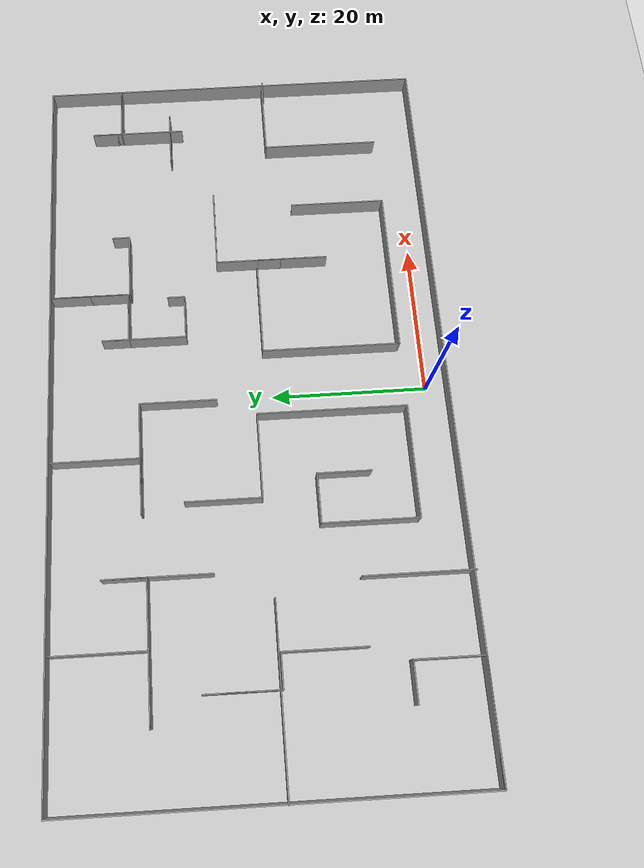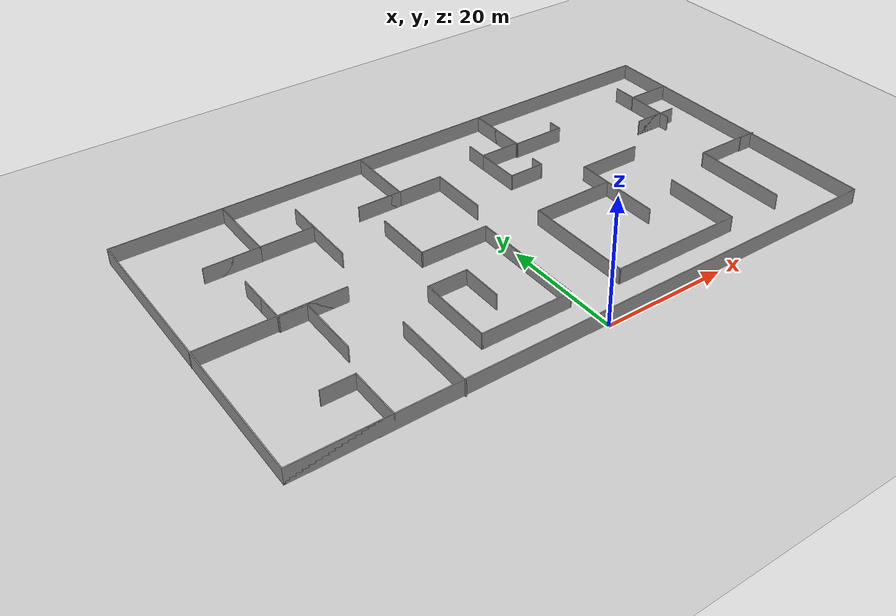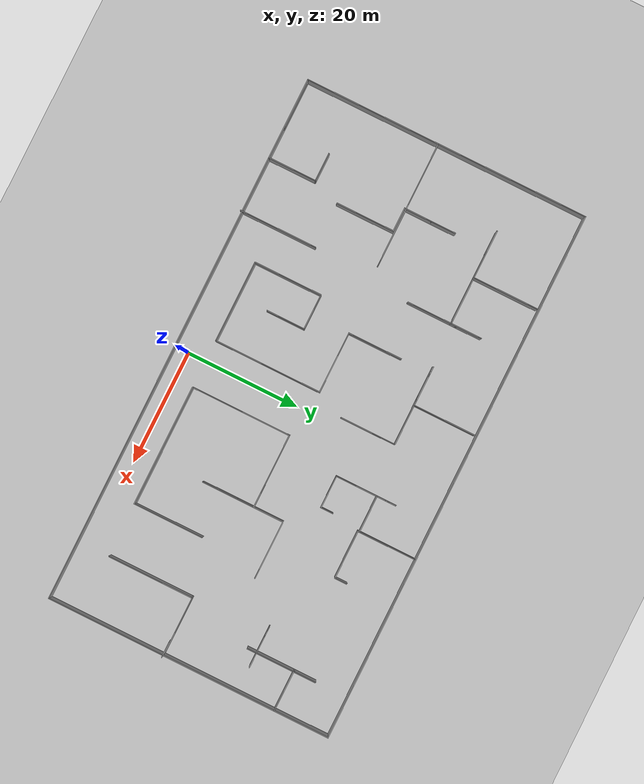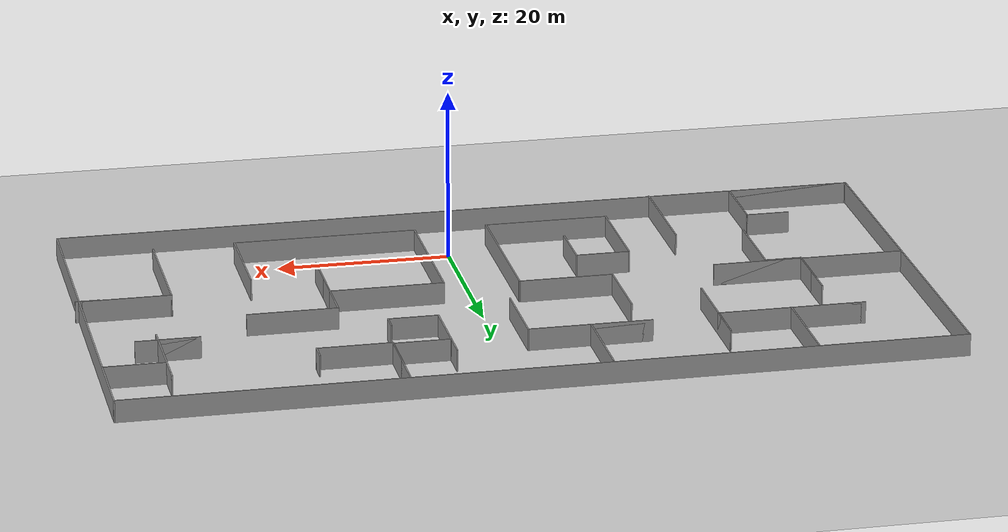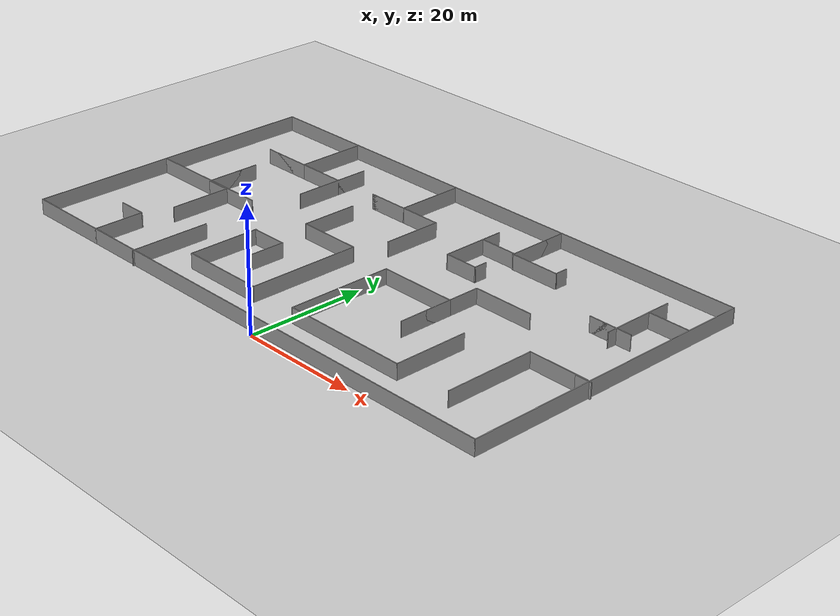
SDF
<sdf version="1.6">
 <world name="default">
  <model name="ground_plane">
   <static>1</static>
   <link name="link">
    <collision name="collision">
     <geometry><plane><normal>0 0 1</normal><size>100 100</size></plane></geometry>
     <surface><friction><ode><mu>100</mu><mu2>50</mu2></ode></friction></surface>
    </collision>
    <visual name="visual">
     <cast_shadows>0</cast_shadows>
     <geometry><plane><normal>0 0 1</normal><size>100 100</size></plane></geometry>
     <material>
      <script><uri>file://media/materials/scripts/gazebo.material</uri><name>Gazebo/Grey</name></script>
     </material>
    </visual>
   </link>
  </model>
  <model name="PaperTestRoom2_clone">
   <pose>-1.27358 20.494 2.5 0 -0 0</pose>
   <link name="Wall_10">
    <collision name="Wall_10_Collision">
     <geometry><box><size>14.25 0.15 2.5</size></box></geometry>
     <pose>0 0 1.25 0 -0 0</pose>
    </collision>
    <visual name="Wall_10_Visual">
     <pose>0 0 1.25 0 -0 0</pose>
     <geometry><box><size>14.25 0.15 2.5</size></box></geometry>
     <material>
      <script><uri>file://media/materials/scripts/gazebo.material</uri><name>Gazebo/Grey</name></script>
      <ambient>1 1 1 1</ambient>
     </material>
     <meta><layer>0</layer></meta>
    </visual>
    <pose>-39.665 -22.375 0 0 -0 0</pose>
   </link>
   <link name="Wall_11">
    <collision name="Wall_11_Collision">
     <geometry><box><size>8.5 0.15 2.5</size></box></geometry>
     <pose>0 0 1.25 0 -0 0</pose>
    </collision>
    <visual name="Wall_11_Visual">
     <pose>0 0 1.25 0 -0 0</pose>
     <geometry><box><size>8.5 0.15 2.5</size></box></geometry>
     <material>
      <script><uri>file://media/materials/scripts/gazebo.material</uri><name>Gazebo/Grey</name></script>
      <ambient>1 1 1 1</ambient>
     </material>
     <meta><layer>0</layer></meta>
    </visual>
    <pose>-32.615 -18.2 0 0 -0 1.5708</pose>
   </link>
   <link name="Wall_12">
    <collision name="Wall_12_Collision">
     <geometry><box><size>5 0.15 2.5</size></box></geometry>
     <pose>0 0 1.25 0 -0 0</pose>
    </collision>
    <visual name="Wall_12_Visual">
     <pose>0 0 1.25 0 -0 0</pose>
     <geometry><box><size>5 0.15 2.5</size></box></geometry>
     <material>
      <script><uri>file://media/materials/scripts/gazebo.material</uri><name>Gazebo/Grey</name></script>
      <ambient>1 1 1 1</ambient>
     </material>
     <meta><layer>0</layer></meta>
    </visual>
    <pose>-35.04 -14.025 0 0 -0 3.14159</pose>
   </link>
   <link name="Wall_14">
    <collision name="Wall_14_Collision">
     <geometry><box><size>13.5 0.15 2.5</size></box></geometry>
     <pose>0 0 1.25 0 -0 0</pose>
    </collision>
    <visual name="Wall_14_Visual">
     <pose>0 0 1.25 0 -0 0</pose>
     <geometry><box><size>13.5 0.15 2.5</size></box></geometry>
     <material>
      <script><uri>file://media/materials/scripts/gazebo.material</uri><name>Gazebo/Grey</name></script>
      <ambient>1 1 1 1</ambient>
     </material>
     <meta><layer>0</layer></meta>
    </visual>
    <pose>-22.9755 -15.9599 0 0 -0 1.5708</pose>
   </link>
   <link name="Wall_17">
    <collision name="Wall_17_Collision">
     <geometry><box><size>14.25 0.15 2.5</size></box></geometry>
     <pose>0 0 1.25 0 -0 0</pose>
    </collision>
    <visual name="Wall_17_Visual">
     <pose>0 0 1.25 0 -0 0</pose>
     <geometry><box><size>14.25 0.15 2.5</size></box></geometry>
     <material>
      <script><uri>file://media/materials/scripts/gazebo.material</uri><name>Gazebo/Grey</name></script>
      <ambient>1 1 1 1</ambient>
     </material>
     <meta><layer>0</layer></meta>
    </visual>
    <pose>-9.45369 -16.8689 0 0 -0 0</pose>
   </link>
   <link name="Wall_18">
    <collision name="Wall_18_Collision">
     <geometry><box><size>18.75 0.15 2.5</size></box></geometry>
     <pose>0 0 1.25 0 -0 0</pose>
    </collision>
    <visual name="Wall_18_Visual">
     <pose>0 0 1.25 0 -0 0</pose>
     <geometry><box><size>18.75 0.15 2.5</size></box></geometry>
     <material>
      <script><uri>file://media/materials/scripts/gazebo.material</uri><name>Gazebo/Grey</name></script>
      <ambient>1 1 1 1</ambient>
     </material>
     <meta><layer>0</layer></meta>
    </visual>
    <pose>-2.40369 -7.56892 0 0 -0 1.5708</pose>
   </link>
   <link name="Wall_19">
    <collision name="Wall_19_Collision">
     <geometry><box><size>10.75 0.15 2.5</size></box></geometry>
     <pose>0 0 1.25 0 -0 0</pose>
    </collision>
    <visual name="Wall_19_Visual">
     <pose>0 0 1.25 0 -0 0</pose>
     <geometry><box><size>10.75 0.15 2.5</size></box></geometry>
     <material>
      <script><uri>file://media/materials/scripts/gazebo.material</uri><name>Gazebo/Grey</name></script>
      <ambient>1 1 1 1</ambient>
     </material>
     <meta><layer>0</layer></meta>
    </visual>
    <pose>-7.70369 1.73108 0 0 -0 3.14159</pose>
   </link>
   <link name="Wall_20">
    <collision name="Wall_20_Collision">
     <geometry><box><size>9.5 0.15 2.5</size></box></geometry>
     <pose>0 0 1.25 0 -0 0</pose>
    </collision>
    <visual name="Wall_20_Visual">
     <pose>0 0 1.25 0 -0 0</pose>
     <geometry><box><size>9.5 0.15 2.5</size></box></geometry>
     <material>
      <script><uri>file://media/materials/scripts/gazebo.material</uri><name>Gazebo/Grey</name></script>
      <ambient>1 1 1 1</ambient>
     </material>
     <meta><layer>0</layer></meta>
    </visual>
    <pose>-13.0037 6.40608 0 0 -0 1.5708</pose>
   </link>
   <link name="Wall_23">
    <collision name="Wall_23_Collision">
     <geometry><box><size>12 0.15 2.5</size></box></geometry>
     <pose>0 0 1.25 0 -0 0</pose>
    </collision>
    <visual name="Wall_23_Visual">
     <pose>0 0 1.25 0 -0 0</pose>
     <geometry><box><size>12 0.15 2.5</size></box></geometry>
     <material>
      <script><uri>file://media/materials/scripts/gazebo.material</uri><name>Gazebo/Grey</name></script>
      <ambient>1 1 1 1</ambient>
     </material>
     <meta><layer>0</layer></meta>
    </visual>
    <pose>-16.5037 -10.9439 0 0 -0 1.5708</pose>
   </link>
   <link name="Wall_24">
    <collision name="Wall_24_Collision">
     <geometry><box><size>6.25 0.15 2.5</size></box></geometry>
     <pose>0 0 1.25 0 -0 0</pose>
    </collision>
    <visual name="Wall_24_Visual">
     <pose>0 0 1.25 0 -0 0</pose>
     <geometry><box><size>6.25 0.15 2.5</size></box></geometry>
     <material>
      <script><uri>file://media/materials/scripts/gazebo.material</uri><name>Gazebo/Grey</name></script>
      <ambient>1 1 1 1</ambient>
     </material>
     <meta><layer>0</layer></meta>
    </visual>
    <pose>-13.4537 -5.01892 0 0 -0 0</pose>
   </link>
   <link name="Wall_25">
    <collision name="Wall_25_Collision">
     <geometry><box><size>6.75 0.15 2.5</size></box></geometry>
     <pose>0 0 1.25 0 -0 0</pose>
    </collision>
    <visual name="Wall_25_Visual">
     <pose>0 0 1.25 0 -0 0</pose>
     <geometry><box><size>6.75 0.15 2.5</size></box></geometry>
     <material>
      <script><uri>file://media/materials/scripts/gazebo.material</uri><name>Gazebo/Grey</name></script>
      <ambient>1 1 1 1</ambient>
     </material>
     <meta><layer>0</layer></meta>
    </visual>
    <pose>-10.4037 -8.31892 0 0 -0 -1.5708</pose>
   </link>
   <link name="Wall_30">
    <collision name="Wall_30_Collision">
     <geometry><box><size>21 0.15 2.5</size></box></geometry>
     <pose>0 0 1.25 0 -0 0</pose>
    </collision>
    <visual name="Wall_30_Visual">
     <pose>0 0 1.25 0 -0 0</pose>
     <geometry><box><size>21 0.15 2.5</size></box></geometry>
     <material>
      <script><uri>file://media/materials/scripts/gazebo.material</uri><name>Gazebo/Grey</name></script>
      <ambient>1 1 1 1</ambient>
     </material>
     <meta><layer>0</layer></meta>
    </visual>
    <pose>16.3713 -16.8689 0 0 -0 0</pose>
   </link>
   <link name="Wall_31">
    <collision name="Wall_31_Collision">
     <geometry><box><size>12.25 0.15 2.5</size></box></geometry>
     <pose>0 0 1.25 0 -0 0</pose>
    </collision>
    <visual name="Wall_31_Visual">
     <pose>0 0 1.25 0 -0 0</pose>
     <geometry><box><size>12.25 0.15 2.5</size></box></geometry>
     <material>
      <script><uri>file://media/materials/scripts/gazebo.material</uri><name>Gazebo/Grey</name></script>
      <ambient>1 1 1 1</ambient>
     </material>
     <meta><layer>0</layer></meta>
    </visual>
    <pose>26.7963 -10.8189 0 0 -0 1.5708</pose>
   </link>
   <link name="Wall_34">
    <collision name="Wall_34_Collision">
     <geometry><box><size>17.5 0.15 2.5</size></box></geometry>
     <pose>0 0 1.25 0 -0 0</pose>
    </collision>
    <visual name="Wall_34_Visual">
     <pose>0 0 1.25 0 -0 0</pose>
     <geometry><box><size>17.5 0.15 2.5</size></box></geometry>
     <material>
      <script><uri>file://media/materials/scripts/gazebo.material</uri><name>Gazebo/Grey</name></script>
      <ambient>1 1 1 1</ambient>
     </material>
     <meta><layer>0</layer></meta>
    </visual>
    <pose>5.94631 -8.19392 0 0 -0 1.5708</pose>
   </link>
   <link name="Wall_35">
    <collision name="Wall_35_Collision">
     <geometry><box><size>13 0.15 2.5</size></box></geometry>
     <pose>0 0 1.25 0 -0 0</pose>
    </collision>
    <visual name="Wall_35_Visual">
     <pose>0 0 1.25 0 -0 0</pose>
     <geometry><box><size>13 0.15 2.5</size></box></geometry>
     <material>
      <script><uri>file://media/materials/scripts/gazebo.material</uri><name>Gazebo/Grey</name></script>
      <ambient>1 1 1 1</ambient>
     </material>
     <meta><layer>0</layer></meta>
    </visual>
    <pose>12.3713 0.481076 0 0 -0 0</pose>
   </link>
   <link name="Wall_36">
    <collision name="Wall_36_Collision">
     <geometry><box><size>9.25 0.15 2.5</size></box></geometry>
     <pose>0 0 1.25 0 -0 0</pose>
    </collision>
    <visual name="Wall_36_Visual">
     <pose>0 0 1.25 0 -0 0</pose>
     <geometry><box><size>9.25 0.15 2.5</size></box></geometry>
     <material>
      <script><uri>file://media/materials/scripts/gazebo.material</uri><name>Gazebo/Grey</name></script>
      <ambient>1 1 1 1</ambient>
     </material>
     <meta><layer>0</layer></meta>
    </visual>
    <pose>18.7963 -4.06892 0 0 -0 -1.5708</pose>
   </link>
   <link name="Wall_37">
    <collision name="Wall_37_Collision">
     <geometry><box><size>14.5 0.15 2.5</size></box></geometry>
     <pose>0 0 1.25 0 -0 0</pose>
    </collision>
    <visual name="Wall_37_Visual">
     <pose>0 0 1.25 0 -0 0</pose>
     <geometry><box><size>14.5 0.15 2.5</size></box></geometry>
     <material>
      <script><uri>file://media/materials/scripts/gazebo.material</uri><name>Gazebo/Grey</name></script>
      <ambient>1 1 1 1</ambient>
     </material>
     <meta><layer>0</layer></meta>
    </visual>
    <pose>18.7963 -1.44392 0 0 -0 1.5708</pose>
   </link>
   <link name="Wall_38">
    <collision name="Wall_38_Collision">
     <geometry><box><size>10.25 0.15 2.5</size></box></geometry>
     <pose>0 0 1.25 0 -0 0</pose>
    </collision>
    <visual name="Wall_38_Visual">
     <pose>0 0 1.25 0 -0 0</pose>
     <geometry><box><size>10.25 0.15 2.5</size></box></geometry>
     <material>
      <script><uri>file://media/materials/scripts/gazebo.material</uri><name>Gazebo/Grey</name></script>
      <ambient>1 1 1 1</ambient>
     </material>
     <meta><layer>0</layer></meta>
    </visual>
    <pose>23.8463 5.73108 0 0 -0 0</pose>
   </link>
   <link name="Wall_41">
    <collision name="Wall_41_Collision">
     <geometry><box><size>15 0.15 2.5</size></box></geometry>
     <pose>0 0 1.25 0 -0 0</pose>
    </collision>
    <visual name="Wall_41_Visual">
     <pose>0 0 1.25 0 -0 0</pose>
     <geometry><box><size>15 0.15 2.5</size></box></geometry>
     <material>
      <script><uri>file://media/materials/scripts/gazebo.material</uri><name>Gazebo/Grey</name></script>
      <ambient>1 1 1 1</ambient>
     </material>
     <meta><layer>0</layer></meta>
    </visual>
    <pose>36.1307 -9.29131 0 0 -0 1.5708</pose>
   </link>
   <link name="Wall_42">
    <collision name="Wall_42_Collision">
     <geometry><box><size>10 0.15 2.5</size></box></geometry>
     <pose>0 0 1.25 0 -0 0</pose>
    </collision>
    <visual name="Wall_42_Visual">
     <pose>0 0 1.25 0 -0 0</pose>
     <geometry><box><size>10 0.15 2.5</size></box></geometry>
     <material>
      <script><uri>file://media/materials/scripts/gazebo.material</uri><name>Gazebo/Grey</name></script>
      <ambient>1 1 1 1</ambient>
     </material>
     <meta><layer>0</layer></meta>
    </visual>
    <pose>41.0556 -1.86631 0 0 -0 0</pose>
   </link>
   <link name="Wall_44">
    <collision name="Wall_44_Collision">
     <geometry><box><size>2.75 0.15 2.5</size></box></geometry>
     <pose>0 0 1.25 0 -0 0</pose>
    </collision>
    <visual name="Wall_44_Visual">
     <pose>0 0 1.25 0 -0 0</pose>
     <geometry><box><size>2.75 0.15 2.5</size></box></geometry>
     <material>
      <script><uri>file://media/materials/scripts/gazebo.material</uri><name>Gazebo/Grey</name></script>
      <ambient>1 1 1 1</ambient>
     </material>
     <meta><layer>0</layer></meta>
    </visual>
    <pose>45.4491 -1.98643 0 0 -0 0</pose>
   </link>
   <link name="Wall_48">
    <collision name="Wall_48_Collision">
     <geometry><box><size>7 0.15 2.5</size></box></geometry>
     <pose>0 0 1.25 0 -0 0</pose>
    </collision>
    <visual name="Wall_48_Visual">
     <pose>0 0 1.25 0 -0 0</pose>
     <geometry><box><size>7 0.15 2.5</size></box></geometry>
     <material>
      <script><uri>file://media/materials/scripts/gazebo.material</uri><name>Gazebo/Grey</name></script>
      <ambient>1 1 1 1</ambient>
     </material>
     <meta><layer>0</layer></meta>
    </visual>
    <pose>42.8737 17.9027 0 0 -0 3.14159</pose>
   </link>
   <link name="Wall_49">
    <collision name="Wall_49_Collision">
     <geometry><box><size>4 0.15 2.5</size></box></geometry>
     <pose>0 0 1.25 0 -0 0</pose>
    </collision>
    <visual name="Wall_49_Visual">
     <pose>0 0 1.25 0 -0 0</pose>
     <geometry><box><size>4 0.15 2.5</size></box></geometry>
     <material>
      <script><uri>file://media/materials/scripts/gazebo.material</uri><name>Gazebo/Grey</name></script>
      <ambient>1 1 1 1</ambient>
     </material>
     <meta><layer>0</layer></meta>
    </visual>
    <pose>39.4487 19.8277 0 0 -0 1.5708</pose>
   </link>
   <link name="Wall_50">
    <collision name="Wall_50_Collision">
     <geometry><box><size>12.25 0.15 2.5</size></box></geometry>
     <pose>0 0 1.25 0 -0 0</pose>
    </collision>
    <visual name="Wall_50_Visual">
     <pose>0 0 1.25 0 -0 0</pose>
     <geometry><box><size>12.25 0.15 2.5</size></box></geometry>
     <material>
      <script><uri>file://media/materials/scripts/gazebo.material</uri><name>Gazebo/Grey</name></script>
      <ambient>1 1 1 1</ambient>
     </material>
     <meta><layer>0</layer></meta>
    </visual>
    <pose>39.4487 15.7027 0 0 -0 -1.5708</pose>
   </link>
   <link name="Wall_51">
    <collision name="Wall_51_Collision">
     <geometry><box><size>1.75 0.15 2.5</size></box></geometry>
     <pose>0 0 1.25 0 -0 0</pose>
    </collision>
    <visual name="Wall_51_Visual">
     <pose>0 0 1.25 0 -0 0</pose>
     <geometry><box><size>1.75 0.15 2.5</size></box></geometry>
     <material>
      <script><uri>file://media/materials/scripts/gazebo.material</uri><name>Gazebo/Grey</name></script>
      <ambient>1 1 1 1</ambient>
     </material>
     <meta><layer>0</layer></meta>
    </visual>
    <pose>39.4487 10.4527 0 0 -0 1.5708</pose>
   </link>
   <link name="Wall_52">
    <collision name="Wall_52_Collision">
     <geometry><box><size>4.75 0.15 2.5</size></box></geometry>
     <pose>0 0 1.25 0 -0 0</pose>
    </collision>
    <visual name="Wall_52_Visual">
     <pose>0 0 1.25 0 -0 0</pose>
     <geometry><box><size>4.75 0.15 2.5</size></box></geometry>
     <material>
      <script><uri>file://media/materials/scripts/gazebo.material</uri><name>Gazebo/Grey</name></script>
      <ambient>1 1 1 1</ambient>
     </material>
     <meta><layer>0</layer></meta>
    </visual>
    <pose>37.1487 11.2527 0 0 -0 3.14159</pose>
   </link>
   <link name="Wall_53">
    <collision name="Wall_53_Collision">
     <geometry><box><size>7.25 0.15 2.5</size></box></geometry>
     <pose>0 0 1.25 0 -0 0</pose>
    </collision>
    <visual name="Wall_53_Visual">
     <pose>0 0 1.25 0 -0 0</pose>
     <geometry><box><size>7.25 0.15 2.5</size></box></geometry>
     <material>
      <script><uri>file://media/materials/scripts/gazebo.material</uri><name>Gazebo/Grey</name></script>
      <ambient>1 1 1 1</ambient>
     </material>
     <meta><layer>0</layer></meta>
    </visual>
    <pose>38.3987 11.2527 0 0 -0 0</pose>
   </link>
   <link name="Wall_56">
    <collision name="Wall_56_Collision">
     <geometry><box><size>2.25 0.15 2.5</size></box></geometry>
     <pose>0 0 1.25 0 -0 0</pose>
    </collision>
    <visual name="Wall_56_Visual">
     <pose>0 0 1.25 0 -0 0</pose>
     <geometry><box><size>2.25 0.15 2.5</size></box></geometry>
     <material>
      <script><uri>file://media/materials/scripts/gazebo.material</uri><name>Gazebo/Grey</name></script>
      <ambient>1 1 1 1</ambient>
     </material>
     <meta><layer>0</layer></meta>
    </visual>
    <pose>23.1582 18.2121 0 0 -0 -1.5708</pose>
   </link>
   <link name="Wall_57">
    <collision name="Wall_57_Collision">
     <geometry><box><size>8.5 0.15 2.5</size></box></geometry>
     <pose>0 0 1.25 0 -0 0</pose>
    </collision>
    <visual name="Wall_57_Visual">
     <pose>0 0 1.25 0 -0 0</pose>
     <geometry><box><size>8.5 0.15 2.5</size></box></geometry>
     <material>
      <script><uri>file://media/materials/scripts/gazebo.material</uri><name>Gazebo/Grey</name></script>
      <ambient>1 1 1 1</ambient>
     </material>
     <meta><layer>0</layer></meta>
    </visual>
    <pose>18.9832 17.1621 0 0 -0 3.14159</pose>
   </link>
   <link name="Wall_58">
    <collision name="Wall_58_Collision">
     <geometry><box><size>10.25 0.15 2.5</size></box></geometry>
     <pose>0 0 1.25 0 -0 0</pose>
    </collision>
    <visual name="Wall_58_Visual">
     <pose>0 0 1.25 0 -0 0</pose>
     <geometry><box><size>10.25 0.15 2.5</size></box></geometry>
     <material>
      <script><uri>file://media/materials/scripts/gazebo.material</uri><name>Gazebo/Grey</name></script>
      <ambient>1 1 1 1</ambient>
     </material>
     <meta><layer>0</layer></meta>
    </visual>
    <pose>14.8082 22.2121 0 0 -0 1.5708</pose>
   </link>
   <link name="Wall_59">
    <collision name="Wall_59_Collision">
     <geometry><box><size>10 0.15 2.5</size></box></geometry>
     <pose>0 0 1.25 0 -0 0</pose>
    </collision>
    <visual name="Wall_59_Visual">
     <pose>0 0 1.25 0 -0 0</pose>
     <geometry><box><size>10 0.15 2.5</size></box></geometry>
     <material>
      <script><uri>file://media/materials/scripts/gazebo.material</uri><name>Gazebo/Grey</name></script>
      <ambient>1 1 1 1</ambient>
     </material>
     <meta><layer>0</layer></meta>
    </visual>
    <pose>14.8082 22.3371 0 0 -0 -1.5708</pose>
   </link>
   <link name="Wall_6">
    <collision name="Wall_6_Collision">
     <geometry><box><size>93 0.15 2.5</size></box></geometry>
     <pose>0 0 1.25 0 -0 0</pose>
    </collision>
    <visual name="Wall_6_Visual">
     <pose>0 0 1.25 0 -0 0</pose>
     <geometry><box><size>93 0.15 2.5</size></box></geometry>
     <material>
      <script><uri>file://media/materials/scripts/gazebo.material</uri><name>Gazebo/Grey</name></script>
      <ambient>1 1 1 1</ambient>
     </material>
     <meta><layer>0</layer></meta>
    </visual>
    <pose>-0.040017 -22.375 0 0 -0 0</pose>
   </link>
   <link name="Wall_60">
    <collision name="Wall_60_Collision">
     <geometry><box><size>6.5 0.15 2.5</size></box></geometry>
     <pose>0 0 1.25 0 -0 0</pose>
    </collision>
    <visual name="Wall_60_Visual">
     <pose>0 0 1.25 0 -0 0</pose>
     <geometry><box><size>6.5 0.15 2.5</size></box></geometry>
     <material>
      <script><uri>file://media/materials/scripts/gazebo.material</uri><name>Gazebo/Grey</name></script>
      <ambient>1 1 1 1</ambient>
     </material>
     <meta><layer>0</layer></meta>
    </visual>
    <pose>11.6332 17.4121 0 0 -0 3.14159</pose>
   </link>
   <link name="Wall_61">
    <collision name="Wall_61_Collision">
     <geometry><box><size>3.5 0.15 2.5</size></box></geometry>
     <pose>0 0 1.25 0 -0 0</pose>
    </collision>
    <visual name="Wall_61_Visual">
     <pose>0 0 1.25 0 -0 0</pose>
     <geometry><box><size>3.5 0.15 2.5</size></box></geometry>
     <material>
      <script><uri>file://media/materials/scripts/gazebo.material</uri><name>Gazebo/Grey</name></script>
      <ambient>1 1 1 1</ambient>
     </material>
     <meta><layer>0</layer></meta>
    </visual>
    <pose>8.45816 19.0871 0 0 -0 1.5708</pose>
   </link>
   <link name="Wall_62">
    <collision name="Wall_62_Collision">
     <geometry><box><size>10.75 0.15 2.5</size></box></geometry>
     <pose>0 0 1.25 0 -0 0</pose>
    </collision>
    <visual name="Wall_62_Visual">
     <pose>0 0 1.25 0 -0 0</pose>
     <geometry><box><size>10.75 0.15 2.5</size></box></geometry>
     <material>
      <script><uri>file://media/materials/scripts/gazebo.material</uri><name>Gazebo/Grey</name></script>
      <ambient>1 1 1 1</ambient>
     </material>
     <meta><layer>0</layer></meta>
    </visual>
    <pose>8.45816 15.4621 0 0 -0 -1.5708</pose>
   </link>
   <link name="Wall_63">
    <collision name="Wall_63_Collision">
     <geometry><box><size>5.75 0.15 2.5</size></box></geometry>
     <pose>0 0 1.25 0 -0 0</pose>
    </collision>
    <visual name="Wall_63_Visual">
     <pose>0 0 1.25 0 -0 0</pose>
     <geometry><box><size>5.75 0.15 2.5</size></box></geometry>
     <material>
      <script><uri>file://media/materials/scripts/gazebo.material</uri><name>Gazebo/Grey</name></script>
      <ambient>1 1 1 1</ambient>
     </material>
     <meta><layer>0</layer></meta>
    </visual>
    <pose>11.2582 10.1621 0 0 -0 0</pose>
   </link>
   <link name="Wall_64">
    <collision name="Wall_64_Collision">
     <geometry><box><size>2.25 0.15 2.5</size></box></geometry>
     <pose>0 0 1.25 0 -0 0</pose>
    </collision>
    <visual name="Wall_64_Visual">
     <pose>0 0 1.25 0 -0 0</pose>
     <geometry><box><size>2.25 0.15 2.5</size></box></geometry>
     <material>
      <script><uri>file://media/materials/scripts/gazebo.material</uri><name>Gazebo/Grey</name></script>
      <ambient>1 1 1 1</ambient>
     </material>
     <meta><layer>0</layer></meta>
    </visual>
    <pose>14.0582 11.2121 0 0 -0 1.5708</pose>
   </link>
   <link name="Wall_67">
    <collision name="Wall_67_Collision">
     <geometry><box><size>11 0.15 2.5</size></box></geometry>
     <pose>0 0 1.25 0 -0 0</pose>
    </collision>
    <visual name="Wall_67_Visual">
     <pose>0 0 1.25 0 -0 0</pose>
     <geometry><box><size>11 0.15 2.5</size></box></geometry>
     <material>
      <script><uri>file://media/materials/scripts/gazebo.material</uri><name>Gazebo/Grey</name></script>
      <ambient>1 1 1 1</ambient>
     </material>
     <meta><layer>0</layer></meta>
    </visual>
    <pose>-7.26444 21.7016 0 0 -0 -1.5708</pose>
   </link>
   <link name="Wall_68">
    <collision name="Wall_68_Collision">
     <geometry><box><size>7 0.15 2.5</size></box></geometry>
     <pose>0 0 1.25 0 -0 0</pose>
    </collision>
    <visual name="Wall_68_Visual">
     <pose>0 0 1.25 0 -0 0</pose>
     <geometry><box><size>7 0.15 2.5</size></box></geometry>
     <material>
      <script><uri>file://media/materials/scripts/gazebo.material</uri><name>Gazebo/Grey</name></script>
      <ambient>1 1 1 1</ambient>
     </material>
     <meta><layer>0</layer></meta>
    </visual>
    <pose>-10.6894 16.2766 0 0 -0 3.14159</pose>
   </link>
   <link name="Wall_69">
    <collision name="Wall_69_Collision">
     <geometry><box><size>14 0.15 2.5</size></box></geometry>
     <pose>0 0 1.25 0 -0 0</pose>
    </collision>
    <visual name="Wall_69_Visual">
     <pose>0 0 1.25 0 -0 0</pose>
     <geometry><box><size>14 0.15 2.5</size></box></geometry>
     <material>
      <script><uri>file://media/materials/scripts/gazebo.material</uri><name>Gazebo/Grey</name></script>
      <ambient>1 1 1 1</ambient>
     </material>
     <meta><layer>0</layer></meta>
    </visual>
    <pose>-7.18944 16.2766 0 0 -0 0</pose>
   </link>
   <link name="Wall_7">
    <collision name="Wall_7_Collision">
     <geometry><box><size>50 0.15 2.5</size></box></geometry>
     <pose>0 0 1.25 0 -0 0</pose>
    </collision>
    <visual name="Wall_7_Visual">
     <pose>0 0 1.25 0 -0 0</pose>
     <geometry><box><size>50 0.15 2.5</size></box></geometry>
     <material>
      <script><uri>file://media/materials/scripts/gazebo.material</uri><name>Gazebo/Grey</name></script>
      <ambient>1 1 1 1</ambient>
     </material>
     <meta><layer>0</layer></meta>
    </visual>
    <pose>46.385 2.55 0 0 -0 1.5708</pose>
   </link>
   <link name="Wall_70">
    <collision name="Wall_70_Collision">
     <geometry><box><size>9.75 0.15 2.5</size></box></geometry>
     <pose>0 0 1.25 0 -0 0</pose>
    </collision>
    <visual name="Wall_70_Visual">
     <pose>0 0 1.25 0 -0 0</pose>
     <geometry><box><size>9.75 0.15 2.5</size></box></geometry>
     <material>
      <script><uri>file://media/materials/scripts/gazebo.material</uri><name>Gazebo/Grey</name></script>
      <ambient>1 1 1 1</ambient>
     </material>
     <meta><layer>0</layer></meta>
    </visual>
    <pose>-0.264437 11.4766 0 0 -0 -1.5708</pose>
   </link>
   <link name="Wall_75">
    <collision name="Wall_75_Collision">
     <geometry><box><size>11.5 0.15 2.5</size></box></geometry>
     <pose>0 0 1.25 0 -0 0</pose>
    </collision>
    <visual name="Wall_75_Visual">
     <pose>0 0 1.25 0 -0 0</pose>
     <geometry><box><size>11.5 0.15 2.5</size></box></geometry>
     <material>
      <script><uri>file://media/materials/scripts/gazebo.material</uri><name>Gazebo/Grey</name></script>
      <ambient>1 1 1 1</ambient>
     </material>
     <meta><layer>0</layer></meta>
    </visual>
    <pose>-29.9196 21.4516 0 0 -0 -1.5708</pose>
   </link>
   <link name="Wall_76">
    <collision name="Wall_76_Collision">
     <geometry><box><size>8.5 0.15 2.5</size></box></geometry>
     <pose>0 0 1.25 0 -0 0</pose>
    </collision>
    <visual name="Wall_76_Visual">
     <pose>0 0 1.25 0 -0 0</pose>
     <geometry><box><size>8.5 0.15 2.5</size></box></geometry>
     <material>
      <script><uri>file://media/materials/scripts/gazebo.material</uri><name>Gazebo/Grey</name></script>
      <ambient>1 1 1 1</ambient>
     </material>
     <meta><layer>0</layer></meta>
    </visual>
    <pose>-34.0946 15.7766 0 0 -0 3.14159</pose>
   </link>
   <link name="Wall_77">
    <collision name="Wall_77_Collision">
     <geometry><box><size>16.75 0.15 2.5</size></box></geometry>
     <pose>0 0 1.25 0 -0 0</pose>
    </collision>
    <visual name="Wall_77_Visual">
     <pose>0 0 1.25 0 -0 0</pose>
     <geometry><box><size>16.75 0.15 2.5</size></box></geometry>
     <material>
      <script><uri>file://media/materials/scripts/gazebo.material</uri><name>Gazebo/Grey</name></script>
      <ambient>1 1 1 1</ambient>
     </material>
     <meta><layer>0</layer></meta>
    </visual>
    <pose>-29.9696 15.7766 0 0 -0 0</pose>
   </link>
   <link name="Wall_78">
    <collision name="Wall_78_Collision">
     <geometry><box><size>5.5 0.15 2.5</size></box></geometry>
     <pose>0 0 1.25 0 -0 0</pose>
    </collision>
    <visual name="Wall_78_Visual">
     <pose>0 0 1.25 0 -0 0</pose>
     <geometry><box><size>5.5 0.15 2.5</size></box></geometry>
     <material>
      <script><uri>file://media/materials/scripts/gazebo.material</uri><name>Gazebo/Grey</name></script>
      <ambient>1 1 1 1</ambient>
     </material>
     <meta><layer>0</layer></meta>
    </visual>
    <pose>-21.6696 18.4516 0 0 -0 1.5708</pose>
   </link>
   <link name="Wall_79">
    <collision name="Wall_79_Collision">
     <geometry><box><size>13.25 0.15 2.5</size></box></geometry>
     <pose>0 0 1.25 0 -0 0</pose>
    </collision>
    <visual name="Wall_79_Visual">
     <pose>0 0 1.25 0 -0 0</pose>
     <geometry><box><size>13.25 0.15 2.5</size></box></geometry>
     <material>
      <script><uri>file://media/materials/scripts/gazebo.material</uri><name>Gazebo/Grey</name></script>
      <ambient>1 1 1 1</ambient>
     </material>
     <meta><layer>0</layer></meta>
    </visual>
    <pose>-21.6696 14.5766 0 0 -0 -1.5708</pose>
   </link>
   <link name="Wall_8">
    <collision name="Wall_8_Collision">
     <geometry><box><size>93.25 0.15 2.5</size></box></geometry>
     <pose>0 0 1.25 0 -0 0</pose>
    </collision>
    <visual name="Wall_8_Visual">
     <pose>0 0 1.25 0 -0 0</pose>
     <geometry><box><size>93.25 0.15 2.5</size></box></geometry>
     <material>
      <script><uri>file://media/materials/scripts/gazebo.material</uri><name>Gazebo/Grey</name></script>
      <ambient>1 1 1 1</ambient>
     </material>
     <meta><layer>0</layer></meta>
    </visual>
    <pose>-0.165017 27.475 0 0 -0 3.14159</pose>
   </link>
   <link name="Wall_84">
    <collision name="Wall_84_Collision">
     <geometry><box><size>22 0.15 2.5</size></box></geometry>
     <pose>0 0 1.25 0 -0 0</pose>
    </collision>
    <visual name="Wall_84_Visual">
     <pose>0 0 1.25 0 -0 0</pose>
     <geometry><box><size>22 0.15 2.5</size></box></geometry>
     <material>
      <script><uri>file://media/materials/scripts/gazebo.material</uri><name>Gazebo/Grey</name></script>
      <ambient>1 1 1 1</ambient>
     </material>
     <meta><layer>0</layer></meta>
    </visual>
    <pose>-35.8241 1.07321 0 0 -0 0</pose>
   </link>
   <link name="Wall_85">
    <collision name="Wall_85_Collision">
     <geometry><box><size>10.25 0.15 2.5</size></box></geometry>
     <pose>0 0 1.25 0 -0 0</pose>
    </collision>
    <visual name="Wall_85_Visual">
     <pose>0 0 1.25 0 -0 0</pose>
     <geometry><box><size>10.25 0.15 2.5</size></box></geometry>
     <material>
      <script><uri>file://media/materials/scripts/gazebo.material</uri><name>Gazebo/Grey</name></script>
      <ambient>1 1 1 1</ambient>
     </material>
     <meta><layer>0</layer></meta>
    </visual>
    <pose>-29.9491 1.07321 0 0 -0 3.14159</pose>
   </link>
   <link name="Wall_86">
    <collision name="Wall_86_Collision">
     <geometry><box><size>9 0.15 2.5</size></box></geometry>
     <pose>0 0 1.25 0 -0 0</pose>
    </collision>
    <visual name="Wall_86_Visual">
     <pose>0 0 1.25 0 -0 0</pose>
     <geometry><box><size>9 0.15 2.5</size></box></geometry>
     <material>
      <script><uri>file://media/materials/scripts/gazebo.material</uri><name>Gazebo/Grey</name></script>
      <ambient>1 1 1 1</ambient>
     </material>
     <meta><layer>0</layer></meta>
    </visual>
    <pose>-34.9991 5.49821 0 0 -0 1.5708</pose>
   </link>
   <link name="Wall_87">
    <collision name="Wall_87_Collision">
     <geometry><box><size>9.25 0.15 2.5</size></box></geometry>
     <pose>0 0 1.25 0 -0 0</pose>
    </collision>
    <visual name="Wall_87_Visual">
     <pose>0 0 1.25 0 -0 0</pose>
     <geometry><box><size>9.25 0.15 2.5</size></box></geometry>
     <material>
      <script><uri>file://media/materials/scripts/gazebo.material</uri><name>Gazebo/Grey</name></script>
      <ambient>1 1 1 1</ambient>
     </material>
     <meta><layer>0</layer></meta>
    </visual>
    <pose>-34.9991 5.37321 0 0 -0 -1.5708</pose>
   </link>
   <link name="Wall_88">
    <collision name="Wall_88_Collision">
     <geometry><box><size>4.25 0.15 2.5</size></box></geometry>
     <pose>0 0 1.25 0 -0 0</pose>
    </collision>
    <visual name="Wall_88_Visual">
     <pose>0 0 1.25 0 -0 0</pose>
     <geometry><box><size>4.25 0.15 2.5</size></box></geometry>
     <material>
      <script><uri>file://media/materials/scripts/gazebo.material</uri><name>Gazebo/Grey</name></script>
      <ambient>1 1 1 1</ambient>
     </material>
     <meta><layer>0</layer></meta>
    </visual>
    <pose>-32.9491 0.82321 0 0 -0 0</pose>
   </link>
   <link name="Wall_89">
    <collision name="Wall_89_Collision">
     <geometry><box><size>10.25 0.15 2.5</size></box></geometry>
     <pose>0 0 1.25 0 -0 0</pose>
    </collision>
    <visual name="Wall_89_Visual">
     <pose>0 0 1.25 0 -0 0</pose>
     <geometry><box><size>10.25 0.15 2.5</size></box></geometry>
     <material>
      <script><uri>file://media/materials/scripts/gazebo.material</uri><name>Gazebo/Grey</name></script>
      <ambient>1 1 1 1</ambient>
     </material>
     <meta><layer>0</layer></meta>
    </visual>
    <pose>-30.8991 -4.22679 0 0 -0 -1.5708</pose>
   </link>
   <link name="Wall_9">
    <collision name="Wall_9_Collision">
     <geometry><box><size>50 0.15 2.5</size></box></geometry>
     <pose>0 0 1.25 0 -0 0</pose>
    </collision>
    <visual name="Wall_9_Visual">
     <pose>0 0 1.25 0 -0 0</pose>
     <geometry><box><size>50 0.15 2.5</size></box></geometry>
     <material>
      <script><uri>file://media/materials/scripts/gazebo.material</uri><name>Gazebo/Grey</name></script>
      <ambient>1 1 1 1</ambient>
     </material>
     <meta><layer>0</layer></meta>
    </visual>
    <pose>-46.715 2.55 0 0 -0 -1.5708</pose>
   </link>
   <static>1</static>
  </model>
 </world>
</sdf>
